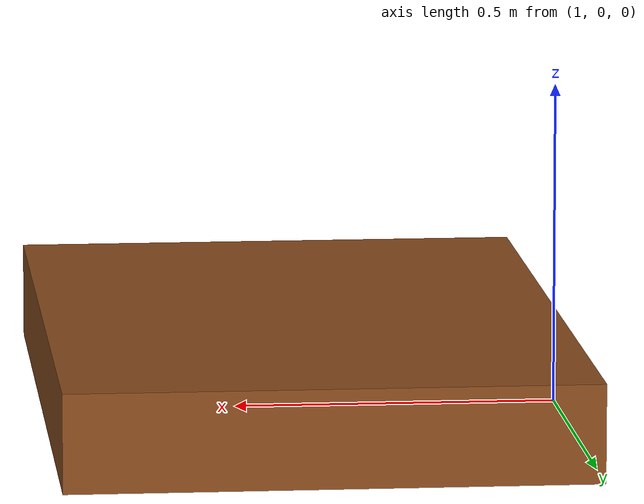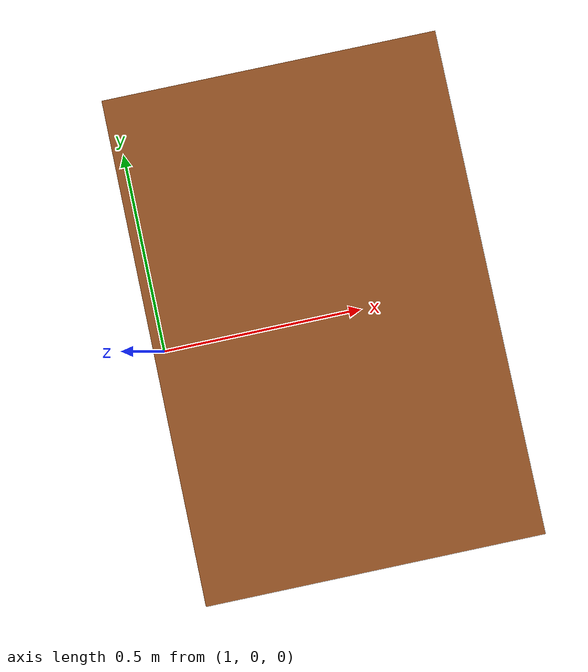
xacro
<?xml version="1.0"?>

<robot xmlns:xacro="http://www.ros.org/wiki/xacro" name="pickcell_bag_pallet">
  <!-- Bags are stateful markers so a picked payload can follow the TCP. -->
  <link name="cell"/>
  <link name="bag_pallet">
    <visual>
      <geometry><box size="0.8 1.2 0.15"/></geometry>
      <material name="wood_brown"><color rgba="0.55 0.30 0.12 1.0"/></material>
    </visual>
  </link>
  <joint name="cell_to_bag_pallet" type="fixed">
    <parent link="cell"/><child link="bag_pallet"/>
    <origin xyz="1.4 0 0.075" rpy="0 0 0"/>
  </joint>
</robot>
